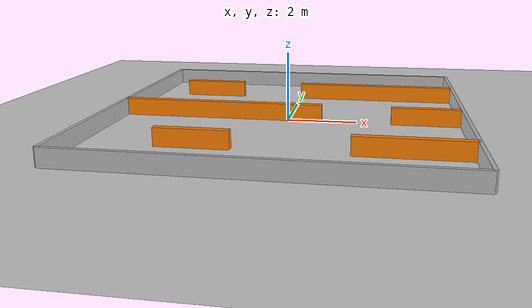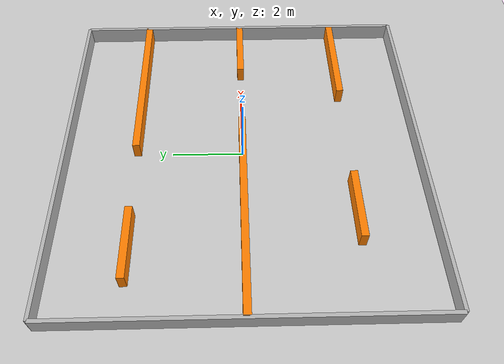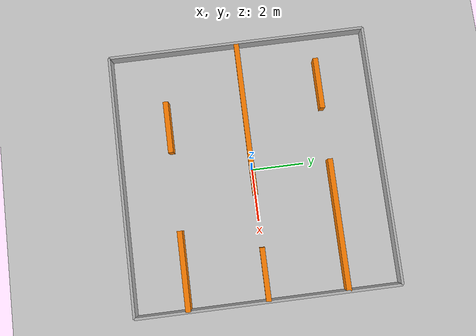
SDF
<?xml version="1.0" ?>
<sdf version="1.6">
  <world name="golem_final_maze_v2">
    <include><uri>model://sun</uri></include>
    <include><uri>model://ground_plane</uri></include>

    <model name='outer_walls'>
      <static>1</static>
      <pose>0 0 0.25 0 0 0</pose>
      <link name='wall_link'>
        <collision name='north'><pose>5 0 0 0 0 1.57</pose><geometry><box><size>10 0.1 0.5</size></box></geometry></collision>
        <visual name='north_v'><pose>5 0 0 0 0 1.57</pose><geometry><box><size>10 0.1 0.5</size></box></geometry></visual>
        <collision name='south'><pose>-5 0 0 0 0 1.57</pose><geometry><box><size>10 0.1 0.5</size></box></geometry></collision>
        <visual name='south_v'><pose>-5 0 0 0 0 1.57</pose><geometry><box><size>10 0.1 0.5</size></box></geometry></visual>
        <collision name='east'><pose>0 5 0 0 0 0</pose><geometry><box><size>10 0.1 0.5</size></box></geometry></collision>
        <visual name='east_v'><pose>0 5 0 0 0 0</pose><geometry><box><size>10 0.1 0.5</size></box></geometry></visual>
        <collision name='west'><pose>0 -5 0 0 0 0</pose><geometry><box><size>10 0.1 0.5</size></box></geometry></collision>
        <visual name='west_v'><pose>0 -5 0 0 0 0</pose><geometry><box><size>10 0.1 0.5</size></box></geometry></visual>
      </link>
    </model>

    <model name='wall_y_minus3_right'>
      <static>1</static>
      <pose>3.5 -3.0 0.25 0 0 0</pose>
      <link name='link'><collision name='c'><geometry><box><size>3.0 0.2 0.5</size></box></geometry></collision>
      <visual name='v'><geometry><box><size>3.0 0.2 0.5</size></box></geometry>
      <material><ambient>1.0 0.5 0.0 1</ambient></material></visual></link>
    </model>

    <model name='wall_y_minus3_left'>
      <static>1</static>
      <pose>-2.0 -3.0 0.25 0 0 0</pose>
      <link name='link'><collision name='c'><geometry><box><size>2.0 0.2 0.5</size></box></geometry></collision>
      <visual name='v'><geometry><box><size>2.0 0.2 0.5</size></box></geometry>
      <material><ambient>1.0 0.5 0.0 1</ambient></material></visual></link>
    </model>

    <model name='wall_y0_right'>
      <static>1</static>
      <pose>4.0 0.0 0.25 0 0 0</pose>
      <link name='link'><collision name='c'><geometry><box><size>2.0 0.2 0.5</size></box></geometry></collision>
      <visual name='v'><geometry><box><size>2.0 0.2 0.5</size></box></geometry>
      <material><ambient>1.0 0.5 0.0 1</ambient></material></visual></link>
    </model>

    <model name='wall_y0_left'>
      <static>1</static>
      <pose>-2.0 0.0 0.25 0 0 0</pose>
      <link name='link'><collision name='c'><geometry><box><size>6.0 0.2 0.5</size></box></geometry></collision>
      <visual name='v'><geometry><box><size>6.0 0.2 0.5</size></box></geometry>
      <material><ambient>1.0 0.5 0.0 1</ambient></material></visual></link>
    </model>

    <model name='wall_y3_right'>
      <static>1</static>
      <pose>2.5 3.0 0.25 0 0 0</pose>
      <link name='link'><collision name='c'><geometry><box><size>5.0 0.2 0.5</size></box></geometry></collision>
      <visual name='v'><geometry><box><size>5.0 0.2 0.5</size></box></geometry>
      <material><ambient>1.0 0.5 0.0 1</ambient></material></visual></link>
    </model>

    <model name='wall_y3_left'>
      <static>1</static>
      <pose>-3.0 3.0 0.25 0 0 0</pose>
      <link name='link'><collision name='c'><geometry><box><size>2.0 0.2 0.5</size></box></geometry></collision>
      <visual name='v'><geometry><box><size>2.0 0.2 0.5</size></box></geometry>
      <material><ambient>1.0 0.5 0.0 1</ambient></material></visual></link>
    </model>

  </world>
</sdf>
